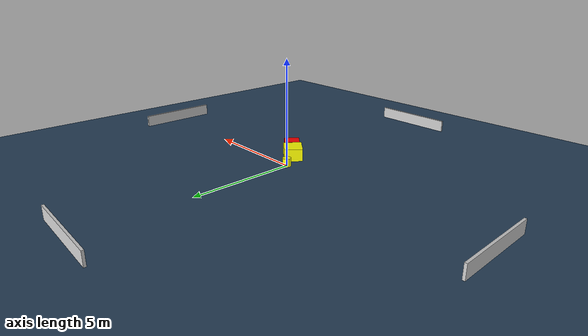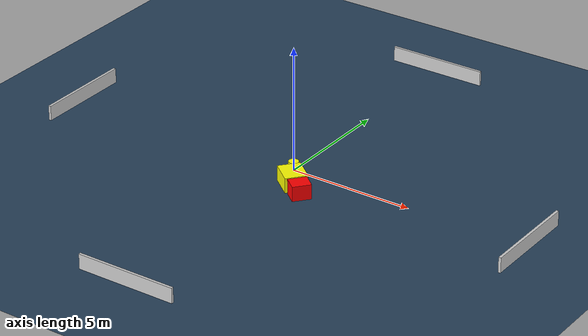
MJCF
<?xml version="1.0" ?>
<mujoco model="generated_environment">
  <option timestep="0.01" integrator="RK4" cone="elliptic"/>
  <default>
    <geom density="1"/>
  </default>
  <asset>
    <texture builtin="gradient" height="3072" name="skybox" rgb1="0.3 0.5 0.7" rgb2="0 0 0" type="skybox" width="512"/>
    <texture builtin="checker" height="300" name="groundplane" rgb1="0.2 0.3 0.4" rgb2="0.1 0.2 0.3" type="2d" width="300"/>
    <material name="groundplane" reflectance="0.2" texrepeat="5 5" texture="groundplane"/>
  </asset>
  <worldbody>
    <light dir="0 0 -1" directional="true" pos="0 0 1.5"/>
    <geom condim="3" friction="0.5 0.005 0.001" material="groundplane" name="floor" pos="0 0 0" size="0 0 0.05" type="plane"/>
    <body name="walls">
      <geom name="wall_1" condim="4" pos="-10.0 0.0 0.3" rgba="0.800000011920929 0.800000011920929 0.800000011920929 1.0" size="0.05 2.0 0.3" type="box"/>
      <geom name="wall_2" condim="4" pos="10.0 0.0 0.3" rgba="0.800000011920929 0.800000011920929 0.800000011920929 1.0" size="0.05 2.0 0.3" type="box"/>
      <geom name="wall_3" condim="4" pos="0.0 -10.0 0.3" rgba="0.800000011920929 0.800000011920929 0.800000011920929 1.0" size="2.0 0.05 0.3" type="box"/>
      <geom name="wall_4" condim="4" pos="0.0 10.0 0.3" rgba="0.800000011920929 0.800000011920929 0.800000011920929 1.0" size="2.0 0.05 0.3" type="box"/>
    </body>
    <body name="robot">
      <joint name="joint_x" type="slide" pos="0 0 0" axis="1 0 0"/>
      <joint name="joint_y" type="slide" pos="0 0 0" axis="0 1 0"/>
      <geom name="robot" type="cylinder" pos="0.0 0.0 0.2" size="0.2 0.2 0.0" mass="5.0" friction="1.0 0.005 0.0001" condim="4" rgba="1.0 1.0 0.0 1.0"/>
    </body>
    <body name="obstacle_1_movable">
      <geom name="obstacle_1_movable" condim="4" pos="0.5986639390453052 -0.9251462614968516 0.3" euler="0 0 140.78987688546835" friction="0.0 0.005 0.001" rgba="1.0 1.0 0.0 1.0" size="0.5188752345103977 0.44564795660789125 0.3" type="box" mass="0.1"/>
      <joint type="free"/>
    </body>
    <body name="obstacle_2_static">
      <geom name="obstacle_2_static" condim="4" pos="1.295143518692174 -1.4892847053023486 0.3" euler="0 0 50.327192956686716" friction="0.0 0.005 0.001" rgba="1.0 0.0 0.0 1.0" size="0.3692440799713238 0.31424056759851116 0.3" type="box"/>
    </body>
  </worldbody>
  <actuator>
    <motor name="actuator_x" joint="joint_x" gear="1" ctrlrange="-1 1"/>
    <motor name="actuator_y" joint="joint_y" gear="1" ctrlrange="-1 1"/>
  </actuator>
</mujoco>
